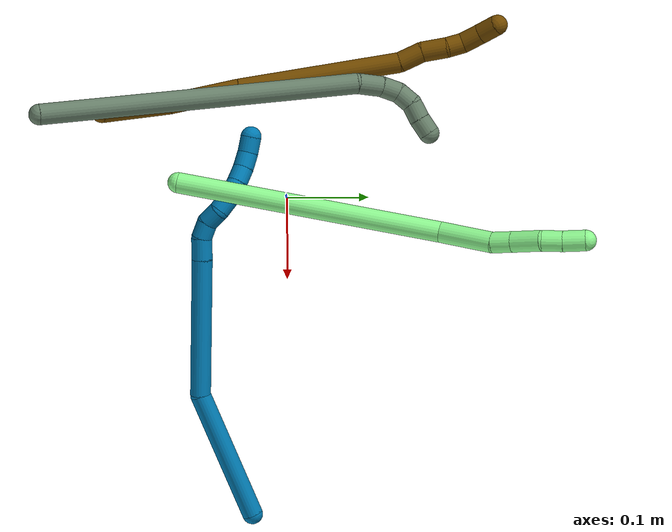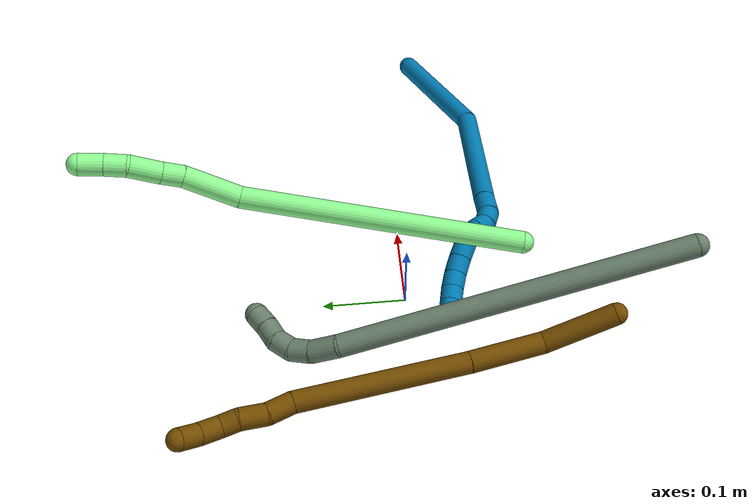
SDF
<sdf version="1.7">
 <world name="default">
  <model name="9">
   <static>0</static>
   <link name="9">
    <collision name="collision-cylinder-e_1_1_4">
     <pose>-0.0692 -0.017659 -0.039445 2.72066 -1.01253 -2.40607</pose>
     <geometry><cylinder><radius>0.0125</radius><length>0.163174</length></cylinder></geometry>
     <surface>
      <friction><ode><mu>1.16</mu><mu2>1.16</mu2><slip1>0</slip1><slip2>0</slip2></ode></friction>
      <contact><ode><kp>1e+06</kp><kd>1</kd><max_vel>0</max_vel><min_depth>0.001</min_depth></ode></contact>
     </surface>
    </collision>
    <visual name="visual-cylinder-e_1_1_4">
     <pose>-0.0692 -0.017659 -0.039445 2.72066 -1.01253 -2.40607</pose>
     <geometry><cylinder><radius>0.0125</radius><length>0.163174</length></cylinder></geometry>
     <material><ambient>0 0.490196 0.709804 1</ambient></material>
    </visual>
    <collision name="collision-cylinder-e_2_4_5">
     <pose>-0.220266 -0.029364 -0.097268 -2.82826 -1.33906 2.74762</pose>
     <geometry><cylinder><radius>0.0125</radius><length>0.168228</length></cylinder></geometry>
     <surface>
      <friction><ode><mu>1.16</mu><mu2>1.16</mu2><slip1>0</slip1><slip2>0</slip2></ode></friction>
      <contact><ode><kp>1e+06</kp><kd>1</kd><max_vel>0</max_vel><min_depth>0.001</min_depth></ode></contact>
     </surface>
    </collision>
    <visual name="visual-cylinder-e_2_4_5">
     <pose>-0.220266 -0.029364 -0.097268 -2.82826 -1.33906 2.74762</pose>
     <geometry><cylinder><radius>0.0125</radius><length>0.168228</length></cylinder></geometry>
     <material><ambient>0 0.490196 0.709804 1</ambient></material>
    </visual>
    <collision name="collision-cylinder-e_3_5_6">
     <pose>-0.314978 -0.022682 -0.118994 -2.92758 -1.31017 2.86376</pose>
     <geometry><cylinder><radius>0.0125</radius><length>0.02659</length></cylinder></geometry>
     <surface>
      <friction><ode><mu>1.16</mu><mu2>1.16</mu2><slip1>0</slip1><slip2>0</slip2></ode></friction>
      <contact><ode><kp>1e+06</kp><kd>1</kd><max_vel>0</max_vel><min_depth>0.001</min_depth></ode></contact>
     </surface>
    </collision>
    <visual name="visual-cylinder-e_3_5_6">
     <pose>-0.314978 -0.022682 -0.118994 -2.92758 -1.31017 2.86376</pose>
     <geometry><cylinder><radius>0.0125</radius><length>0.02659</length></cylinder></geometry>
     <material><ambient>0 0.490196 0.709804 1</ambient></material>
    </visual>
    <collision name="collision-cylinder-e_4_6_7">
     <pose>-0.337715 -0.019255 -0.121756 -1.35712 -1.29846 1.09834</pose>
     <geometry><cylinder><radius>0.0125</radius><length>0.02054</length></cylinder></geometry>
     <surface>
      <friction><ode><mu>1.16</mu><mu2>1.16</mu2><slip1>0</slip1><slip2>0</slip2></ode></friction>
      <contact><ode><kp>1e+06</kp><kd>1</kd><max_vel>0</max_vel><min_depth>0.001</min_depth></ode></contact>
     </surface>
    </collision>
    <visual name="visual-cylinder-e_4_6_7">
     <pose>-0.337715 -0.019255 -0.121756 -1.35712 -1.29846 1.09834</pose>
     <geometry><cylinder><radius>0.0125</radius><length>0.02054</length></cylinder></geometry>
     <material><ambient>0 0.490196 0.709804 1</ambient></material>
    </visual>
    <collision name="collision-cylinder-e_5_7_8">
     <pose>-0.356082 -0.013028 -0.116302 -0.627079 -0.953872 0.331996</pose>
     <geometry><cylinder><radius>0.0125</radius><length>0.02078</length></cylinder></geometry>
     <surface>
      <friction><ode><mu>1.16</mu><mu2>1.16</mu2><slip1>0</slip1><slip2>0</slip2></ode></friction>
      <contact><ode><kp>1e+06</kp><kd>1</kd><max_vel>0</max_vel><min_depth>0.001</min_depth></ode></contact>
     </surface>
    </collision>
    <visual name="visual-cylinder-e_5_7_8">
     <pose>-0.356082 -0.013028 -0.116302 -0.627079 -0.953872 0.331996</pose>
     <geometry><cylinder><radius>0.0125</radius><length>0.02078</length></cylinder></geometry>
     <material><ambient>0 0.490196 0.709804 1</ambient></material>
    </visual>
    <collision name="collision-cylinder-e_6_8_9">
     <pose>-0.372712 -0.003319 -0.110056 -1.35131 -0.910444 0.747777</pose>
     <geometry><cylinder><radius>0.0125</radius><length>0.020653</length></cylinder></geometry>
     <surface>
      <friction><ode><mu>1.16</mu><mu2>1.16</mu2><slip1>0</slip1><slip2>0</slip2></ode></friction>
      <contact><ode><kp>1e+06</kp><kd>1</kd><max_vel>0</max_vel><min_depth>0.001</min_depth></ode></contact>
     </surface>
    </collision>
    <visual name="visual-cylinder-e_6_8_9">
     <pose>-0.372712 -0.003319 -0.110056 -1.35131 -0.910444 0.747777</pose>
     <geometry><cylinder><radius>0.0125</radius><length>0.020653</length></cylinder></geometry>
     <material><ambient>0 0.490196 0.709804 1</ambient></material>
    </visual>
    <collision name="collision-cylinder-e_7_9_10">
     <pose>-0.387905 0.00978 -0.11036 -1.80947 -0.779695 0.963499</pose>
     <geometry><cylinder><radius>0.0125</radius><length>0.020019</length></cylinder></geometry>
     <surface>
      <friction><ode><mu>1.16</mu><mu2>1.16</mu2><slip1>0</slip1><slip2>0</slip2></ode></friction>
      <contact><ode><kp>1e+06</kp><kd>1</kd><max_vel>0</max_vel><min_depth>0.001</min_depth></ode></contact>
     </surface>
    </collision>
    <visual name="visual-cylinder-e_7_9_10">
     <pose>-0.387905 0.00978 -0.11036 -1.80947 -0.779695 0.963499</pose>
     <geometry><cylinder><radius>0.0125</radius><length>0.020019</length></cylinder></geometry>
     <material><ambient>0 0.490196 0.709804 1</ambient></material>
    </visual>
    <collision name="collision-cylinder-e_8_10_11">
     <pose>-0.402277 0.023152 -0.114194 -1.89254 -0.822796 1.08865</pose>
     <geometry><cylinder><radius>0.0125</radius><length>0.02001</length></cylinder></geometry>
     <surface>
      <friction><ode><mu>1.16</mu><mu2>1.16</mu2><slip1>0</slip1><slip2>0</slip2></ode></friction>
      <contact><ode><kp>1e+06</kp><kd>1</kd><max_vel>0</max_vel><min_depth>0.001</min_depth></ode></contact>
     </surface>
    </collision>
    <visual name="visual-cylinder-e_8_10_11">
     <pose>-0.402277 0.023152 -0.114194 -1.89254 -0.822796 1.08865</pose>
     <geometry><cylinder><radius>0.0125</radius><length>0.02001</length></cylinder></geometry>
     <material><ambient>0 0.490196 0.709804 1</ambient></material>
    </visual>
    <collision name="collision-cylinder-e_9_11_12">
     <pose>-0.4179 0.034702 -0.118659 -1.99697 -0.977127 1.3797</pose>
     <geometry><cylinder><radius>0.0125</radius><length>0.02</length></cylinder></geometry>
     <surface>
      <friction><ode><mu>1.16</mu><mu2>1.16</mu2><slip1>0</slip1><slip2>0</slip2></ode></friction>
      <contact><ode><kp>1e+06</kp><kd>1</kd><max_vel>0</max_vel><min_depth>0.001</min_depth></ode></contact>
     </surface>
    </collision>
    <visual name="visual-cylinder-e_9_11_12">
     <pose>-0.4179 0.034702 -0.118659 -1.99697 -0.977127 1.3797</pose>
     <geometry><cylinder><radius>0.0125</radius><length>0.02</length></cylinder></geometry>
     <material><ambient>0 0.490196 0.709804 1</ambient></material>
    </visual>
    <collision name="collision-cylinder-e_10_12_2">
     <pose>-0.435587 0.042753 -0.1227 -2.09967 -1.22131 1.76808</pose>
     <geometry><cylinder><radius>0.0125</radius><length>0.020005</length></cylinder></geometry>
     <surface>
      <friction><ode><mu>1.16</mu><mu2>1.16</mu2><slip1>0</slip1><slip2>0</slip2></ode></friction>
      <contact><ode><kp>1e+06</kp><kd>1</kd><max_vel>0</max_vel><min_depth>0.001</min_depth></ode></contact>
     </surface>
    </collision>
    <visual name="visual-cylinder-e_10_12_2">
     <pose>-0.435587 0.042753 -0.1227 -2.09967 -1.22131 1.76808</pose>
     <geometry><cylinder><radius>0.0125</radius><length>0.020005</length></cylinder></geometry>
     <material><ambient>0 0.490196 0.709804 1</ambient></material>
    </visual>
    <collision name="collision-sphere-2">
     <pose>-0.444985 0.04571 -0.124428 0 -0 0</pose>
     <geometry><sphere><radius>0.0125</radius></sphere></geometry>
     <surface>
      <friction><ode><mu>1.16</mu><mu2>1.16</mu2><slip1>0</slip1><slip2>0</slip2></ode></friction>
      <contact><ode><kp>1e+06</kp><kd>1</kd><max_vel>0</max_vel><min_depth>0.001</min_depth></ode></contact>
     </surface>
    </collision>
    <visual name="visual-sphere-2">
     <pose>-0.444985 0.04571 -0.124428 0 -0 0</pose>
     <geometry><sphere><radius>0.0125</radius></sphere></geometry>
     <material><ambient>0 0.490196 0.709804 1</ambient></material>
    </visual>
    <collision name="collision-sphere-12">
     <pose>-0.426189 0.039795 -0.120972 0 -0 0</pose>
     <geometry><sphere><radius>0.0125</radius></sphere></geometry>
     <surface>
      <friction><ode><mu>1.16</mu><mu2>1.16</mu2><slip1>0</slip1><slip2>0</slip2></ode></friction>
      <contact><ode><kp>1e+06</kp><kd>1</kd><max_vel>0</max_vel><min_depth>0.001</min_depth></ode></contact>
     </surface>
    </collision>
    <visual name="visual-sphere-12">
     <pose>-0.426189 0.039795 -0.120972 0 -0 0</pose>
     <geometry><sphere><radius>0.0125</radius></sphere></geometry>
     <material><ambient>0 0.490196 0.709804 1</ambient></material>
    </visual>
    <collision name="collision-sphere-11">
     <pose>-0.409611 0.029608 -0.116346 0 -0 0</pose>
     <geometry><sphere><radius>0.0125</radius></sphere></geometry>
     <surface>
      <friction><ode><mu>1.16</mu><mu2>1.16</mu2><slip1>0</slip1><slip2>0</slip2></ode></friction>
      <contact><ode><kp>1e+06</kp><kd>1</kd><max_vel>0</max_vel><min_depth>0.001</min_depth></ode></contact>
     </surface>
    </collision>
    <visual name="visual-sphere-11">
     <pose>-0.409611 0.029608 -0.116346 0 -0 0</pose>
     <geometry><sphere><radius>0.0125</radius></sphere></geometry>
     <material><ambient>0 0.490196 0.709804 1</ambient></material>
    </visual>
    <collision name="collision-sphere-10">
     <pose>-0.394943 0.016696 -0.112043 0 -0 0</pose>
     <geometry><sphere><radius>0.0125</radius></sphere></geometry>
     <surface>
      <friction><ode><mu>1.16</mu><mu2>1.16</mu2><slip1>0</slip1><slip2>0</slip2></ode></friction>
      <contact><ode><kp>1e+06</kp><kd>1</kd><max_vel>0</max_vel><min_depth>0.001</min_depth></ode></contact>
     </surface>
    </collision>
    <visual name="visual-sphere-10">
     <pose>-0.394943 0.016696 -0.112043 0 -0 0</pose>
     <geometry><sphere><radius>0.0125</radius></sphere></geometry>
     <material><ambient>0 0.490196 0.709804 1</ambient></material>
    </visual>
    <collision name="collision-sphere-9">
     <pose>-0.380868 0.002863 -0.108677 0 -0 0</pose>
     <geometry><sphere><radius>0.0125</radius></sphere></geometry>
     <surface>
      <friction><ode><mu>1.16</mu><mu2>1.16</mu2><slip1>0</slip1><slip2>0</slip2></ode></friction>
      <contact><ode><kp>1e+06</kp><kd>1</kd><max_vel>0</max_vel><min_depth>0.001</min_depth></ode></contact>
     </surface>
    </collision>
    <visual name="visual-sphere-9">
     <pose>-0.380868 0.002863 -0.108677 0 -0 0</pose>
     <geometry><sphere><radius>0.0125</radius></sphere></geometry>
     <material><ambient>0 0.490196 0.709804 1</ambient></material>
    </visual>
    <collision name="collision-sphere-4">
     <pose>-0.138401 -0.035319 -0.07889 0 -0 0</pose>
     <geometry><sphere><radius>0.0125</radius></sphere></geometry>
     <surface>
      <friction><ode><mu>1.16</mu><mu2>1.16</mu2><slip1>0</slip1><slip2>0</slip2></ode></friction>
      <contact><ode><kp>1e+06</kp><kd>1</kd><max_vel>0</max_vel><min_depth>0.001</min_depth></ode></contact>
     </surface>
    </collision>
    <visual name="visual-sphere-4">
     <pose>-0.138401 -0.035319 -0.07889 0 -0 0</pose>
     <geometry><sphere><radius>0.0125</radius></sphere></geometry>
     <material><ambient>0 0.490196 0.709804 1</ambient></material>
    </visual>
    <collision name="collision-sphere-1">
     <geometry><sphere><radius>0.0125</radius></sphere></geometry>
     <surface>
      <friction><ode><mu>1.16</mu><mu2>1.16</mu2><slip1>0</slip1><slip2>0</slip2></ode></friction>
      <contact><ode><kp>1e+06</kp><kd>1</kd><max_vel>0</max_vel><min_depth>0.001</min_depth></ode></contact>
     </surface>
    </collision>
    <visual name="visual-sphere-1">
     <geometry><sphere><radius>0.0125</radius></sphere></geometry>
     <material><ambient>0 0.490196 0.709804 1</ambient></material>
    </visual>
    <collision name="collision-sphere-8">
     <pose>-0.364557 -0.009501 -0.111435 0 -0 0</pose>
     <geometry><sphere><radius>0.0125</radius></sphere></geometry>
     <surface>
      <friction><ode><mu>1.16</mu><mu2>1.16</mu2><slip1>0</slip1><slip2>0</slip2></ode></friction>
      <contact><ode><kp>1e+06</kp><kd>1</kd><max_vel>0</max_vel><min_depth>0.001</min_depth></ode></contact>
     </surface>
    </collision>
    <visual name="visual-sphere-8">
     <pose>-0.364557 -0.009501 -0.111435 0 -0 0</pose>
     <geometry><sphere><radius>0.0125</radius></sphere></geometry>
     <material><ambient>0 0.490196 0.709804 1</ambient></material>
    </visual>
    <collision name="collision-sphere-5">
     <pose>-0.302132 -0.02341 -0.115646 0 -0 0</pose>
     <geometry><sphere><radius>0.0125</radius></sphere></geometry>
     <surface>
      <friction><ode><mu>1.16</mu><mu2>1.16</mu2><slip1>0</slip1><slip2>0</slip2></ode></friction>
      <contact><ode><kp>1e+06</kp><kd>1</kd><max_vel>0</max_vel><min_depth>0.001</min_depth></ode></contact>
     </surface>
    </collision>
    <visual name="visual-sphere-5">
     <pose>-0.302132 -0.02341 -0.115646 0 -0 0</pose>
     <geometry><sphere><radius>0.0125</radius></sphere></geometry>
     <material><ambient>0 0.490196 0.709804 1</ambient></material>
    </visual>
    <collision name="collision-sphere-6">
     <pose>-0.327824 -0.021954 -0.122341 0 -0 0</pose>
     <geometry><sphere><radius>0.0125</radius></sphere></geometry>
     <surface>
      <friction><ode><mu>1.16</mu><mu2>1.16</mu2><slip1>0</slip1><slip2>0</slip2></ode></friction>
      <contact><ode><kp>1e+06</kp><kd>1</kd><max_vel>0</max_vel><min_depth>0.001</min_depth></ode></contact>
     </surface>
    </collision>
    <visual name="visual-sphere-6">
     <pose>-0.327824 -0.021954 -0.122341 0 -0 0</pose>
     <geometry><sphere><radius>0.0125</radius></sphere></geometry>
     <material><ambient>0 0.490196 0.709804 1</ambient></material>
    </visual>
    <collision name="collision-sphere-7">
     <pose>-0.347607 -0.016555 -0.12117 0 -0 0</pose>
     <geometry><sphere><radius>0.0125</radius></sphere></geometry>
     <surface>
      <friction><ode><mu>1.16</mu><mu2>1.16</mu2><slip1>0</slip1><slip2>0</slip2></ode></friction>
      <contact><ode><kp>1e+06</kp><kd>1</kd><max_vel>0</max_vel><min_depth>0.001</min_depth></ode></contact>
     </surface>
    </collision>
    <visual name="visual-sphere-7">
     <pose>-0.347607 -0.016555 -0.12117 0 -0 0</pose>
     <geometry><sphere><radius>0.0125</radius></sphere></geometry>
     <material><ambient>0 0.490196 0.709804 1</ambient></material>
    </visual>
    <inertial>
     <pose>-0.223286 -0.013902 -0.084953 0 -0 0</pose>
     <mass>0.5</mass>
     <inertia>
      <ixx>-0.000354</ixx>
      <ixy>0</ixy>
      <ixz>0</ixz>
      <iyy>0.000658</iyy>
      <iyz>0</iyz>
      <izz>0.000753</izz>
     </inertia>
    </inertial>
   </link>
   <pose>0.38776 -0.044132 0.012437 -0.897358 0.429839 -0.155449</pose>
  </model>
  <model name="12">
   <static>0</static>
   <link name="12">
    <collision name="collision-cylinder-e_1_1_4">
     <pose>0.001302 0.021001 -0.037521 -2.63132 0.030272 -0.115941</pose>
     <geometry><cylinder><radius>0.0125</radius><length>0.086036</length></cylinder></geometry>
     <surface>
      <friction><ode><mu>1.16</mu><mu2>1.16</mu2><slip1>0</slip1><slip2>0</slip2></ode></friction>
      <contact><ode><kp>1e+06</kp><kd>1</kd><max_vel>0</max_vel><min_depth>0.001</min_depth></ode></contact>
     </surface>
    </collision>
    <visual name="visual-cylinder-e_1_1_4">
     <pose>0.001302 0.021001 -0.037521 -2.63132 0.030272 -0.115941</pose>
     <geometry><cylinder><radius>0.0125</radius><length>0.086036</length></cylinder></geometry>
     <material><ambient>0.466667 0.301961 0 1</ambient></material>
    </visual>
    <collision name="collision-cylinder-e_2_4_5">
     <pose>-0.006244 0.072092 -0.104958 -2.35331 -0.205587 0.486247</pose>
     <geometry><cylinder><radius>0.0125</radius><length>0.086687</length></cylinder></geometry>
     <surface>
      <friction><ode><mu>1.16</mu><mu2>1.16</mu2><slip1>0</slip1><slip2>0</slip2></ode></friction>
      <contact><ode><kp>1e+06</kp><kd>1</kd><max_vel>0</max_vel><min_depth>0.001</min_depth></ode></contact>
     </surface>
    </collision>
    <visual name="visual-cylinder-e_2_4_5">
     <pose>-0.006244 0.072092 -0.104958 -2.35331 -0.205587 0.486247</pose>
     <geometry><cylinder><radius>0.0125</radius><length>0.086687</length></cylinder></geometry>
     <material><ambient>0.466667 0.301961 0 1</ambient></material>
    </visual>
    <collision name="collision-cylinder-e_3_5_6">
     <pose>-0.030606 0.17244 -0.202462 -2.33682 -0.15781 0.367371</pose>
     <geometry><cylinder><radius>0.0125</radius><length>0.197436</length></cylinder></geometry>
     <surface>
      <friction><ode><mu>1.16</mu><mu2>1.16</mu2><slip1>0</slip1><slip2>0</slip2></ode></friction>
      <contact><ode><kp>1e+06</kp><kd>1</kd><max_vel>0</max_vel><min_depth>0.001</min_depth></ode></contact>
     </surface>
    </collision>
    <visual name="visual-cylinder-e_3_5_6">
     <pose>-0.030606 0.17244 -0.202462 -2.33682 -0.15781 0.367371</pose>
     <geometry><cylinder><radius>0.0125</radius><length>0.197436</length></cylinder></geometry>
     <material><ambient>0.466667 0.301961 0 1</ambient></material>
    </visual>
    <collision name="collision-cylinder-e_4_6_7">
     <pose>-0.052248 0.251658 -0.280267 -2.42166 -0.423635 1.0382</pose>
     <geometry><cylinder><radius>0.0125</radius><length>0.029811</length></cylinder></geometry>
     <surface>
      <friction><ode><mu>1.16</mu><mu2>1.16</mu2><slip1>0</slip1><slip2>0</slip2></ode></friction>
      <contact><ode><kp>1e+06</kp><kd>1</kd><max_vel>0</max_vel><min_depth>0.001</min_depth></ode></contact>
     </surface>
    </collision>
    <visual name="visual-cylinder-e_4_6_7">
     <pose>-0.052248 0.251658 -0.280267 -2.42166 -0.423635 1.0382</pose>
     <geometry><cylinder><radius>0.0125</radius><length>0.029811</length></cylinder></geometry>
     <material><ambient>0.466667 0.301961 0 1</ambient></material>
    </visual>
    <collision name="collision-cylinder-e_5_7_8">
     <pose>-0.061597 0.272218 -0.299873 -2.25129 -0.212589 0.440037</pose>
     <geometry><cylinder><radius>0.0125</radius><length>0.030538</length></cylinder></geometry>
     <surface>
      <friction><ode><mu>1.16</mu><mu2>1.16</mu2><slip1>0</slip1><slip2>0</slip2></ode></friction>
      <contact><ode><kp>1e+06</kp><kd>1</kd><max_vel>0</max_vel><min_depth>0.001</min_depth></ode></contact>
     </surface>
    </collision>
    <visual name="visual-cylinder-e_5_7_8">
     <pose>-0.061597 0.272218 -0.299873 -2.25129 -0.212589 0.440037</pose>
     <geometry><cylinder><radius>0.0125</radius><length>0.030538</length></cylinder></geometry>
     <material><ambient>0.466667 0.301961 0 1</ambient></material>
    </visual>
    <collision name="collision-cylinder-e_6_8_9">
     <pose>-0.06691 0.289826 -0.317143 -2.49021 -0.208101 0.599778</pose>
     <geometry><cylinder><radius>0.0125</radius><length>0.020254</length></cylinder></geometry>
     <surface>
      <friction><ode><mu>1.16</mu><mu2>1.16</mu2><slip1>0</slip1><slip2>0</slip2></ode></friction>
      <contact><ode><kp>1e+06</kp><kd>1</kd><max_vel>0</max_vel><min_depth>0.001</min_depth></ode></contact>
     </surface>
    </collision>
    <visual name="visual-cylinder-e_6_8_9">
     <pose>-0.06691 0.289826 -0.317143 -2.49021 -0.208101 0.599778</pose>
     <geometry><cylinder><radius>0.0125</radius><length>0.020254</length></cylinder></geometry>
     <material><ambient>0.466667 0.301961 0 1</ambient></material>
    </visual>
    <collision name="collision-cylinder-e_7_9_10">
     <pose>-0.075626 0.304516 -0.331371 -2.20209 -0.55195 1.01773</pose>
     <geometry><cylinder><radius>0.0125</radius><length>0.025263</length></cylinder></geometry>
     <surface>
      <friction><ode><mu>1.16</mu><mu2>1.16</mu2><slip1>0</slip1><slip2>0</slip2></ode></friction>
      <contact><ode><kp>1e+06</kp><kd>1</kd><max_vel>0</max_vel><min_depth>0.001</min_depth></ode></contact>
     </surface>
    </collision>
    <visual name="visual-cylinder-e_7_9_10">
     <pose>-0.075626 0.304516 -0.331371 -2.20209 -0.55195 1.01773</pose>
     <geometry><cylinder><radius>0.0125</radius><length>0.025263</length></cylinder></geometry>
     <material><ambient>0.466667 0.301961 0 1</ambient></material>
    </visual>
    <collision name="collision-cylinder-e_8_10_2">
     <pose>-0.089264 0.322011 -0.341824 -2.00673 -0.625042 0.938395</pose>
     <geometry><cylinder><radius>0.0125</radius><length>0.023976</length></cylinder></geometry>
     <surface>
      <friction><ode><mu>1.16</mu><mu2>1.16</mu2><slip1>0</slip1><slip2>0</slip2></ode></friction>
      <contact><ode><kp>1e+06</kp><kd>1</kd><max_vel>0</max_vel><min_depth>0.001</min_depth></ode></contact>
     </surface>
    </collision>
    <visual name="visual-cylinder-e_8_10_2">
     <pose>-0.089264 0.322011 -0.341824 -2.00673 -0.625042 0.938395</pose>
     <geometry><cylinder><radius>0.0125</radius><length>0.023976</length></cylinder></geometry>
     <material><ambient>0.466667 0.301961 0 1</ambient></material>
    </visual>
    <collision name="collision-sphere-2">
     <pose>-0.096279 0.330824 -0.345929 0 -0 0</pose>
     <geometry><sphere><radius>0.0125</radius></sphere></geometry>
     <surface>
      <friction><ode><mu>1.16</mu><mu2>1.16</mu2><slip1>0</slip1><slip2>0</slip2></ode></friction>
      <contact><ode><kp>1e+06</kp><kd>1</kd><max_vel>0</max_vel><min_depth>0.001</min_depth></ode></contact>
     </surface>
    </collision>
    <visual name="visual-sphere-2">
     <pose>-0.096279 0.330824 -0.345929 0 -0 0</pose>
     <geometry><sphere><radius>0.0125</radius></sphere></geometry>
     <material><ambient>0.466667 0.301961 0 1</ambient></material>
    </visual>
    <collision name="collision-sphere-10">
     <pose>-0.082249 0.313199 -0.337719 0 -0 0</pose>
     <geometry><sphere><radius>0.0125</radius></sphere></geometry>
     <surface>
      <friction><ode><mu>1.16</mu><mu2>1.16</mu2><slip1>0</slip1><slip2>0</slip2></ode></friction>
      <contact><ode><kp>1e+06</kp><kd>1</kd><max_vel>0</max_vel><min_depth>0.001</min_depth></ode></contact>
     </surface>
    </collision>
    <visual name="visual-sphere-10">
     <pose>-0.082249 0.313199 -0.337719 0 -0 0</pose>
     <geometry><sphere><radius>0.0125</radius></sphere></geometry>
     <material><ambient>0.466667 0.301961 0 1</ambient></material>
    </visual>
    <collision name="collision-sphere-9">
     <pose>-0.069003 0.295833 -0.325023 0 -0 0</pose>
     <geometry><sphere><radius>0.0125</radius></sphere></geometry>
     <surface>
      <friction><ode><mu>1.16</mu><mu2>1.16</mu2><slip1>0</slip1><slip2>0</slip2></ode></friction>
      <contact><ode><kp>1e+06</kp><kd>1</kd><max_vel>0</max_vel><min_depth>0.001</min_depth></ode></contact>
     </surface>
    </collision>
    <visual name="visual-sphere-9">
     <pose>-0.069003 0.295833 -0.325023 0 -0 0</pose>
     <geometry><sphere><radius>0.0125</radius></sphere></geometry>
     <material><ambient>0.466667 0.301961 0 1</ambient></material>
    </visual>
    <collision name="collision-sphere-4">
     <pose>0.002604 0.042002 -0.075042 0 -0 0</pose>
     <geometry><sphere><radius>0.0125</radius></sphere></geometry>
     <surface>
      <friction><ode><mu>1.16</mu><mu2>1.16</mu2><slip1>0</slip1><slip2>0</slip2></ode></friction>
      <contact><ode><kp>1e+06</kp><kd>1</kd><max_vel>0</max_vel><min_depth>0.001</min_depth></ode></contact>
     </surface>
    </collision>
    <visual name="visual-sphere-4">
     <pose>0.002604 0.042002 -0.075042 0 -0 0</pose>
     <geometry><sphere><radius>0.0125</radius></sphere></geometry>
     <material><ambient>0.466667 0.301961 0 1</ambient></material>
    </visual>
    <collision name="collision-sphere-1">
     <geometry><sphere><radius>0.0125</radius></sphere></geometry>
     <surface>
      <friction><ode><mu>1.16</mu><mu2>1.16</mu2><slip1>0</slip1><slip2>0</slip2></ode></friction>
      <contact><ode><kp>1e+06</kp><kd>1</kd><max_vel>0</max_vel><min_depth>0.001</min_depth></ode></contact>
     </surface>
    </collision>
    <visual name="visual-sphere-1">
     <geometry><sphere><radius>0.0125</radius></sphere></geometry>
     <material><ambient>0.466667 0.301961 0 1</ambient></material>
    </visual>
    <collision name="collision-sphere-8">
     <pose>-0.064818 0.283819 -0.309263 0 -0 0</pose>
     <geometry><sphere><radius>0.0125</radius></sphere></geometry>
     <surface>
      <friction><ode><mu>1.16</mu><mu2>1.16</mu2><slip1>0</slip1><slip2>0</slip2></ode></friction>
      <contact><ode><kp>1e+06</kp><kd>1</kd><max_vel>0</max_vel><min_depth>0.001</min_depth></ode></contact>
     </surface>
    </collision>
    <visual name="visual-sphere-8">
     <pose>-0.064818 0.283819 -0.309263 0 -0 0</pose>
     <geometry><sphere><radius>0.0125</radius></sphere></geometry>
     <material><ambient>0.466667 0.301961 0 1</ambient></material>
    </visual>
    <collision name="collision-sphere-5">
     <pose>-0.015092 0.102181 -0.134874 0 -0 0</pose>
     <geometry><sphere><radius>0.0125</radius></sphere></geometry>
     <surface>
      <friction><ode><mu>1.16</mu><mu2>1.16</mu2><slip1>0</slip1><slip2>0</slip2></ode></friction>
      <contact><ode><kp>1e+06</kp><kd>1</kd><max_vel>0</max_vel><min_depth>0.001</min_depth></ode></contact>
     </surface>
    </collision>
    <visual name="visual-sphere-5">
     <pose>-0.015092 0.102181 -0.134874 0 -0 0</pose>
     <geometry><sphere><radius>0.0125</radius></sphere></geometry>
     <material><ambient>0.466667 0.301961 0 1</ambient></material>
    </visual>
    <collision name="collision-sphere-6">
     <pose>-0.046121 0.242699 -0.270051 0 -0 0</pose>
     <geometry><sphere><radius>0.0125</radius></sphere></geometry>
     <surface>
      <friction><ode><mu>1.16</mu><mu2>1.16</mu2><slip1>0</slip1><slip2>0</slip2></ode></friction>
      <contact><ode><kp>1e+06</kp><kd>1</kd><max_vel>0</max_vel><min_depth>0.001</min_depth></ode></contact>
     </surface>
    </collision>
    <visual name="visual-sphere-6">
     <pose>-0.046121 0.242699 -0.270051 0 -0 0</pose>
     <geometry><sphere><radius>0.0125</radius></sphere></geometry>
     <material><ambient>0.466667 0.301961 0 1</ambient></material>
    </visual>
    <collision name="collision-sphere-7">
     <pose>-0.058375 0.260617 -0.290482 0 -0 0</pose>
     <geometry><sphere><radius>0.0125</radius></sphere></geometry>
     <surface>
      <friction><ode><mu>1.16</mu><mu2>1.16</mu2><slip1>0</slip1><slip2>0</slip2></ode></friction>
      <contact><ode><kp>1e+06</kp><kd>1</kd><max_vel>0</max_vel><min_depth>0.001</min_depth></ode></contact>
     </surface>
    </collision>
    <visual name="visual-sphere-7">
     <pose>-0.058375 0.260617 -0.290482 0 -0 0</pose>
     <geometry><sphere><radius>0.0125</radius></sphere></geometry>
     <material><ambient>0.466667 0.301961 0 1</ambient></material>
    </visual>
    <inertial>
     <pose>-0.030633 0.158402 -0.185605 0 -0 0</pose>
     <mass>0.5</mass>
     <inertia>
      <ixx>0.000963</ixx>
      <ixy>0</ixy>
      <ixz>0</ixz>
      <iyy>-0.000193</iyy>
      <iyz>0</iyz>
      <izz>-0.000448</izz>
     </inertia>
    </inertial>
   </link>
   <pose>-0.099262 -0.221338 0.097596 0.669931 0.522887 -0.026447</pose>
  </model>
  <model name="13">
   <static>0</static>
   <link name="13">
    <collision name="collision-cylinder-e_1_1_4">
     <pose>0.054559 0.104819 0.10811 -0.769948 0.34761 -0.142045</pose>
     <geometry><cylinder><radius>0.0125</radius><length>0.320322</length></cylinder></geometry>
     <surface>
      <friction><ode><mu>1.16</mu><mu2>1.16</mu2><slip1>0</slip1><slip2>0</slip2></ode></friction>
      <contact><ode><kp>1e+06</kp><kd>1</kd><max_vel>0</max_vel><min_depth>0.001</min_depth></ode></contact>
     </surface>
    </collision>
    <visual name="visual-cylinder-e_1_1_4">
     <pose>0.054559 0.104819 0.10811 -0.769948 0.34761 -0.142045</pose>
     <geometry><cylinder><radius>0.0125</radius><length>0.320322</length></cylinder></geometry>
     <material><ambient>0.564706 0.984314 0.572549 1</ambient></material>
    </visual>
    <collision name="collision-cylinder-e_2_4_5">
     <pose>0.117804 0.22454 0.24471 -0.481891 0.263848 -0.065188</pose>
     <geometry><cylinder><radius>0.0125</radius><length>0.06661</length></cylinder></geometry>
     <surface>
      <friction><ode><mu>1.16</mu><mu2>1.16</mu2><slip1>0</slip1><slip2>0</slip2></ode></friction>
      <contact><ode><kp>1e+06</kp><kd>1</kd><max_vel>0</max_vel><min_depth>0.001</min_depth></ode></contact>
     </surface>
    </collision>
    <visual name="visual-cylinder-e_2_4_5">
     <pose>0.117804 0.22454 0.24471 -0.481891 0.263848 -0.065188</pose>
     <geometry><cylinder><radius>0.0125</radius><length>0.06661</length></cylinder></geometry>
     <material><ambient>0.564706 0.984314 0.572549 1</ambient></material>
    </visual>
    <collision name="collision-cylinder-e_3_5_6">
     <pose>0.127364 0.246394 0.283357 -0.600281 0.070918 -0.021957</pose>
     <geometry><cylinder><radius>0.0125</radius><length>0.024677</length></cylinder></geometry>
     <surface>
      <friction><ode><mu>1.16</mu><mu2>1.16</mu2><slip1>0</slip1><slip2>0</slip2></ode></friction>
      <contact><ode><kp>1e+06</kp><kd>1</kd><max_vel>0</max_vel><min_depth>0.001</min_depth></ode></contact>
     </surface>
    </collision>
    <visual name="visual-cylinder-e_3_5_6">
     <pose>0.127364 0.246394 0.283357 -0.600281 0.070918 -0.021957</pose>
     <geometry><cylinder><radius>0.0125</radius><length>0.024677</length></cylinder></geometry>
     <material><ambient>0.564706 0.984314 0.572549 1</ambient></material>
    </visual>
    <collision name="collision-cylinder-e_4_6_7">
     <pose>0.12899 0.262528 0.309392 -0.524273 0.040952 -0.010989</pose>
     <geometry><cylinder><radius>0.0125</radius><length>0.036718</length></cylinder></geometry>
     <surface>
      <friction><ode><mu>1.16</mu><mu2>1.16</mu2><slip1>0</slip1><slip2>0</slip2></ode></friction>
      <contact><ode><kp>1e+06</kp><kd>1</kd><max_vel>0</max_vel><min_depth>0.001</min_depth></ode></contact>
     </surface>
    </collision>
    <visual name="visual-cylinder-e_4_6_7">
     <pose>0.12899 0.262528 0.309392 -0.524273 0.040952 -0.010989</pose>
     <geometry><cylinder><radius>0.0125</radius><length>0.036718</length></cylinder></geometry>
     <material><ambient>0.564706 0.984314 0.572549 1</ambient></material>
    </visual>
    <collision name="collision-cylinder-e_5_7_8">
     <pose>0.132048 0.280363 0.333687 -0.79934 0.188795 -0.079943</pose>
     <geometry><cylinder><radius>0.0125</radius><length>0.024576</length></cylinder></geometry>
     <surface>
      <friction><ode><mu>1.16</mu><mu2>1.16</mu2><slip1>0</slip1><slip2>0</slip2></ode></friction>
      <contact><ode><kp>1e+06</kp><kd>1</kd><max_vel>0</max_vel><min_depth>0.001</min_depth></ode></contact>
     </surface>
    </collision>
    <visual name="visual-cylinder-e_5_7_8">
     <pose>0.132048 0.280363 0.333687 -0.79934 0.188795 -0.079943</pose>
     <geometry><cylinder><radius>0.0125</radius><length>0.024576</length></cylinder></geometry>
     <material><ambient>0.564706 0.984314 0.572549 1</ambient></material>
    </visual>
    <collision name="collision-cylinder-e_6_8_2">
     <pose>0.136109 0.298741 0.351371 -0.809388 0.129926 -0.055716</pose>
     <geometry><cylinder><radius>0.0125</radius><length>0.027098</length></cylinder></geometry>
     <surface>
      <friction><ode><mu>1.16</mu><mu2>1.16</mu2><slip1>0</slip1><slip2>0</slip2></ode></friction>
      <contact><ode><kp>1e+06</kp><kd>1</kd><max_vel>0</max_vel><min_depth>0.001</min_depth></ode></contact>
     </surface>
    </collision>
    <visual name="visual-cylinder-e_6_8_2">
     <pose>0.136109 0.298741 0.351371 -0.809388 0.129926 -0.055716</pose>
     <geometry><cylinder><radius>0.0125</radius><length>0.027098</length></cylinder></geometry>
     <material><ambient>0.564706 0.984314 0.572549 1</ambient></material>
    </visual>
    <collision name="collision-sphere-2">
     <pose>0.137865 0.308466 0.36064 0 -0 0</pose>
     <geometry><sphere><radius>0.0125</radius></sphere></geometry>
     <surface>
      <friction><ode><mu>1.16</mu><mu2>1.16</mu2><slip1>0</slip1><slip2>0</slip2></ode></friction>
      <contact><ode><kp>1e+06</kp><kd>1</kd><max_vel>0</max_vel><min_depth>0.001</min_depth></ode></contact>
     </surface>
    </collision>
    <visual name="visual-sphere-2">
     <pose>0.137865 0.308466 0.36064 0 -0 0</pose>
     <geometry><sphere><radius>0.0125</radius></sphere></geometry>
     <material><ambient>0.564706 0.984314 0.572549 1</ambient></material>
    </visual>
    <collision name="collision-sphere-4">
     <pose>0.109118 0.209639 0.216219 0 -0 0</pose>
     <geometry><sphere><radius>0.0125</radius></sphere></geometry>
     <surface>
      <friction><ode><mu>1.16</mu><mu2>1.16</mu2><slip1>0</slip1><slip2>0</slip2></ode></friction>
      <contact><ode><kp>1e+06</kp><kd>1</kd><max_vel>0</max_vel><min_depth>0.001</min_depth></ode></contact>
     </surface>
    </collision>
    <visual name="visual-sphere-4">
     <pose>0.109118 0.209639 0.216219 0 -0 0</pose>
     <geometry><sphere><radius>0.0125</radius></sphere></geometry>
     <material><ambient>0.564706 0.984314 0.572549 1</ambient></material>
    </visual>
    <collision name="collision-sphere-1">
     <geometry><sphere><radius>0.0125</radius></sphere></geometry>
     <surface>
      <friction><ode><mu>1.16</mu><mu2>1.16</mu2><slip1>0</slip1><slip2>0</slip2></ode></friction>
      <contact><ode><kp>1e+06</kp><kd>1</kd><max_vel>0</max_vel><min_depth>0.001</min_depth></ode></contact>
     </surface>
    </collision>
    <visual name="visual-sphere-1">
     <geometry><sphere><radius>0.0125</radius></sphere></geometry>
     <material><ambient>0.564706 0.984314 0.572549 1</ambient></material>
    </visual>
    <collision name="collision-sphere-8">
     <pose>0.134354 0.289016 0.342101 0 -0 0</pose>
     <geometry><sphere><radius>0.0125</radius></sphere></geometry>
     <surface>
      <friction><ode><mu>1.16</mu><mu2>1.16</mu2><slip1>0</slip1><slip2>0</slip2></ode></friction>
      <contact><ode><kp>1e+06</kp><kd>1</kd><max_vel>0</max_vel><min_depth>0.001</min_depth></ode></contact>
     </surface>
    </collision>
    <visual name="visual-sphere-8">
     <pose>0.134354 0.289016 0.342101 0 -0 0</pose>
     <geometry><sphere><radius>0.0125</radius></sphere></geometry>
     <material><ambient>0.564706 0.984314 0.572549 1</ambient></material>
    </visual>
    <collision name="collision-sphere-5">
     <pose>0.12649 0.239441 0.273201 0 -0 0</pose>
     <geometry><sphere><radius>0.0125</radius></sphere></geometry>
     <surface>
      <friction><ode><mu>1.16</mu><mu2>1.16</mu2><slip1>0</slip1><slip2>0</slip2></ode></friction>
      <contact><ode><kp>1e+06</kp><kd>1</kd><max_vel>0</max_vel><min_depth>0.001</min_depth></ode></contact>
     </surface>
    </collision>
    <visual name="visual-sphere-5">
     <pose>0.12649 0.239441 0.273201 0 -0 0</pose>
     <geometry><sphere><radius>0.0125</radius></sphere></geometry>
     <material><ambient>0.564706 0.984314 0.572549 1</ambient></material>
    </visual>
    <collision name="collision-sphere-6">
     <pose>0.128238 0.253346 0.293513 0 -0 0</pose>
     <geometry><sphere><radius>0.0125</radius></sphere></geometry>
     <surface>
      <friction><ode><mu>1.16</mu><mu2>1.16</mu2><slip1>0</slip1><slip2>0</slip2></ode></friction>
      <contact><ode><kp>1e+06</kp><kd>1</kd><max_vel>0</max_vel><min_depth>0.001</min_depth></ode></contact>
     </surface>
    </collision>
    <visual name="visual-sphere-6">
     <pose>0.128238 0.253346 0.293513 0 -0 0</pose>
     <geometry><sphere><radius>0.0125</radius></sphere></geometry>
     <material><ambient>0.564706 0.984314 0.572549 1</ambient></material>
    </visual>
    <collision name="collision-sphere-7">
     <pose>0.129742 0.271711 0.325272 0 -0 0</pose>
     <geometry><sphere><radius>0.0125</radius></sphere></geometry>
     <surface>
      <friction><ode><mu>1.16</mu><mu2>1.16</mu2><slip1>0</slip1><slip2>0</slip2></ode></friction>
      <contact><ode><kp>1e+06</kp><kd>1</kd><max_vel>0</max_vel><min_depth>0.001</min_depth></ode></contact>
     </surface>
    </collision>
    <visual name="visual-sphere-7">
     <pose>0.129742 0.271711 0.325272 0 -0 0</pose>
     <geometry><sphere><radius>0.0125</radius></sphere></geometry>
     <material><ambient>0.564706 0.984314 0.572549 1</ambient></material>
    </visual>
    <inertial>
     <pose>0.080272 0.158475 0.174009 0 -0 0</pose>
     <mass>0.5</mass>
     <inertia>
      <ixx>0.002242</ixx>
      <ixy>0</ixy>
      <ixz>0</ixz>
      <iyy>0.001738</iyy>
      <iyz>0</iyz>
      <izz>-0.002738</izz>
     </inertia>
    </inertial>
   </link>
   <pose>-0.012812 -0.129161 0.123761 -0.565082 0.278761 0.203942</pose>
  </model>
  <model name="17">
   <static>0</static>
   <link name="17">
    <collision name="collision-cylinder-e_1_1_4">
     <pose>-0.0047 0.19104 0.016587 -1.48419 -0.024503 0.022468</pose>
     <geometry><cylinder><radius>0.0125</radius><length>0.383633</length></cylinder></geometry>
     <surface>
      <friction><ode><mu>1.16</mu><mu2>1.16</mu2><slip1>0</slip1><slip2>0</slip2></ode></friction>
      <contact><ode><kp>1e+06</kp><kd>1</kd><max_vel>0</max_vel><min_depth>0.001</min_depth></ode></contact>
     </surface>
    </collision>
    <visual name="visual-cylinder-e_1_1_4">
     <pose>-0.0047 0.19104 0.016587 -1.48419 -0.024503 0.022468</pose>
     <geometry><cylinder><radius>0.0125</radius><length>0.383633</length></cylinder></geometry>
     <material><ambient>0.415686 0.509804 0.423529 1</ambient></material>
    </visual>
    <collision name="collision-cylinder-e_2_4_5">
     <pose>-0.009639 0.397661 0.030211 -1.75869 -0.015102 0.018244</pose>
     <geometry><cylinder><radius>0.0125</radius><length>0.031724</length></cylinder></geometry>
     <surface>
      <friction><ode><mu>1.16</mu><mu2>1.16</mu2><slip1>0</slip1><slip2>0</slip2></ode></friction>
      <contact><ode><kp>1e+06</kp><kd>1</kd><max_vel>0</max_vel><min_depth>0.001</min_depth></ode></contact>
     </surface>
    </collision>
    <visual name="visual-cylinder-e_2_4_5">
     <pose>-0.009639 0.397661 0.030211 -1.75869 -0.015102 0.018244</pose>
     <geometry><cylinder><radius>0.0125</radius><length>0.031724</length></cylinder></geometry>
     <material><ambient>0.415686 0.509804 0.423529 1</ambient></material>
    </visual>
    <collision name="collision-cylinder-e_3_5_6">
     <pose>-0.006788 0.423852 0.02485 -1.79311 0.27681 -0.345128</pose>
     <geometry><cylinder><radius>0.0125</radius><length>0.022617</length></cylinder></geometry>
     <surface>
      <friction><ode><mu>1.16</mu><mu2>1.16</mu2><slip1>0</slip1><slip2>0</slip2></ode></friction>
      <contact><ode><kp>1e+06</kp><kd>1</kd><max_vel>0</max_vel><min_depth>0.001</min_depth></ode></contact>
     </surface>
    </collision>
    <visual name="visual-cylinder-e_3_5_6">
     <pose>-0.006788 0.423852 0.02485 -1.79311 0.27681 -0.345128</pose>
     <geometry><cylinder><radius>0.0125</radius><length>0.022617</length></cylinder></geometry>
     <material><ambient>0.415686 0.509804 0.423529 1</ambient></material>
    </visual>
    <collision name="collision-cylinder-e_4_6_7">
     <pose>0.002572 0.441969 0.019061 -1.99505 0.650549 -0.962805</pose>
     <geometry><cylinder><radius>0.0125</radius><length>0.020704</length></cylinder></geometry>
     <surface>
      <friction><ode><mu>1.16</mu><mu2>1.16</mu2><slip1>0</slip1><slip2>0</slip2></ode></friction>
      <contact><ode><kp>1e+06</kp><kd>1</kd><max_vel>0</max_vel><min_depth>0.001</min_depth></ode></contact>
     </surface>
    </collision>
    <visual name="visual-cylinder-e_4_6_7">
     <pose>0.002572 0.441969 0.019061 -1.99505 0.650549 -0.962805</pose>
     <geometry><cylinder><radius>0.0125</radius><length>0.020704</length></cylinder></geometry>
     <material><ambient>0.415686 0.509804 0.423529 1</ambient></material>
    </visual>
    <collision name="collision-cylinder-e_5_7_8">
     <pose>0.016213 0.453941 0.009712 -2.4985 0.780453 -1.78016</pose>
     <geometry><cylinder><radius>0.0125</radius><length>0.020956</length></cylinder></geometry>
     <surface>
      <friction><ode><mu>1.16</mu><mu2>1.16</mu2><slip1>0</slip1><slip2>0</slip2></ode></friction>
      <contact><ode><kp>1e+06</kp><kd>1</kd><max_vel>0</max_vel><min_depth>0.001</min_depth></ode></contact>
     </surface>
    </collision>
    <visual name="visual-cylinder-e_5_7_8">
     <pose>0.016213 0.453941 0.009712 -2.4985 0.780453 -1.78016</pose>
     <geometry><cylinder><radius>0.0125</radius><length>0.020956</length></cylinder></geometry>
     <material><ambient>0.415686 0.509804 0.423529 1</ambient></material>
    </visual>
    <collision name="collision-cylinder-e_6_8_2">
     <pose>0.03058 0.463754 -0.001364 -2.33414 0.757107 -1.49942</pose>
     <geometry><cylinder><radius>0.0125</radius><length>0.020368</length></cylinder></geometry>
     <surface>
      <friction><ode><mu>1.16</mu><mu2>1.16</mu2><slip1>0</slip1><slip2>0</slip2></ode></friction>
      <contact><ode><kp>1e+06</kp><kd>1</kd><max_vel>0</max_vel><min_depth>0.001</min_depth></ode></contact>
     </surface>
    </collision>
    <visual name="visual-cylinder-e_6_8_2">
     <pose>0.03058 0.463754 -0.001364 -2.33414 0.757107 -1.49942</pose>
     <geometry><cylinder><radius>0.0125</radius><length>0.020368</length></cylinder></geometry>
     <material><ambient>0.415686 0.509804 0.423529 1</ambient></material>
    </visual>
    <collision name="collision-sphere-2">
     <pose>0.037575 0.469102 -0.006481 0 -0 0</pose>
     <geometry><sphere><radius>0.0125</radius></sphere></geometry>
     <surface>
      <friction><ode><mu>1.16</mu><mu2>1.16</mu2><slip1>0</slip1><slip2>0</slip2></ode></friction>
      <contact><ode><kp>1e+06</kp><kd>1</kd><max_vel>0</max_vel><min_depth>0.001</min_depth></ode></contact>
     </surface>
    </collision>
    <visual name="visual-sphere-2">
     <pose>0.037575 0.469102 -0.006481 0 -0 0</pose>
     <geometry><sphere><radius>0.0125</radius></sphere></geometry>
     <material><ambient>0.415686 0.509804 0.423529 1</ambient></material>
    </visual>
    <collision name="collision-sphere-4">
     <pose>-0.009399 0.38208 0.033173 0 -0 0</pose>
     <geometry><sphere><radius>0.0125</radius></sphere></geometry>
     <surface>
      <friction><ode><mu>1.16</mu><mu2>1.16</mu2><slip1>0</slip1><slip2>0</slip2></ode></friction>
      <contact><ode><kp>1e+06</kp><kd>1</kd><max_vel>0</max_vel><min_depth>0.001</min_depth></ode></contact>
     </surface>
    </collision>
    <visual name="visual-sphere-4">
     <pose>-0.009399 0.38208 0.033173 0 -0 0</pose>
     <geometry><sphere><radius>0.0125</radius></sphere></geometry>
     <material><ambient>0.415686 0.509804 0.423529 1</ambient></material>
    </visual>
    <collision name="collision-sphere-1">
     <geometry><sphere><radius>0.0125</radius></sphere></geometry>
     <surface>
      <friction><ode><mu>1.16</mu><mu2>1.16</mu2><slip1>0</slip1><slip2>0</slip2></ode></friction>
      <contact><ode><kp>1e+06</kp><kd>1</kd><max_vel>0</max_vel><min_depth>0.001</min_depth></ode></contact>
     </surface>
    </collision>
    <visual name="visual-sphere-1">
     <geometry><sphere><radius>0.0125</radius></sphere></geometry>
     <material><ambient>0.415686 0.509804 0.423529 1</ambient></material>
    </visual>
    <collision name="collision-sphere-8">
     <pose>0.023586 0.458406 0.003753 0 -0 0</pose>
     <geometry><sphere><radius>0.0125</radius></sphere></geometry>
     <surface>
      <friction><ode><mu>1.16</mu><mu2>1.16</mu2><slip1>0</slip1><slip2>0</slip2></ode></friction>
      <contact><ode><kp>1e+06</kp><kd>1</kd><max_vel>0</max_vel><min_depth>0.001</min_depth></ode></contact>
     </surface>
    </collision>
    <visual name="visual-sphere-8">
     <pose>0.023586 0.458406 0.003753 0 -0 0</pose>
     <geometry><sphere><radius>0.0125</radius></sphere></geometry>
     <material><ambient>0.415686 0.509804 0.423529 1</ambient></material>
    </visual>
    <collision name="collision-sphere-5">
     <pose>-0.009878 0.413242 0.027248 0 -0 0</pose>
     <geometry><sphere><radius>0.0125</radius></sphere></geometry>
     <surface>
      <friction><ode><mu>1.16</mu><mu2>1.16</mu2><slip1>0</slip1><slip2>0</slip2></ode></friction>
      <contact><ode><kp>1e+06</kp><kd>1</kd><max_vel>0</max_vel><min_depth>0.001</min_depth></ode></contact>
     </surface>
    </collision>
    <visual name="visual-sphere-5">
     <pose>-0.009878 0.413242 0.027248 0 -0 0</pose>
     <geometry><sphere><radius>0.0125</radius></sphere></geometry>
     <material><ambient>0.415686 0.509804 0.423529 1</ambient></material>
    </visual>
    <collision name="collision-sphere-6">
     <pose>-0.003698 0.434462 0.022452 0 -0 0</pose>
     <geometry><sphere><radius>0.0125</radius></sphere></geometry>
     <surface>
      <friction><ode><mu>1.16</mu><mu2>1.16</mu2><slip1>0</slip1><slip2>0</slip2></ode></friction>
      <contact><ode><kp>1e+06</kp><kd>1</kd><max_vel>0</max_vel><min_depth>0.001</min_depth></ode></contact>
     </surface>
    </collision>
    <visual name="visual-sphere-6">
     <pose>-0.003698 0.434462 0.022452 0 -0 0</pose>
     <geometry><sphere><radius>0.0125</radius></sphere></geometry>
     <material><ambient>0.415686 0.509804 0.423529 1</ambient></material>
    </visual>
    <collision name="collision-sphere-7">
     <pose>0.008841 0.449476 0.01567 0 -0 0</pose>
     <geometry><sphere><radius>0.0125</radius></sphere></geometry>
     <surface>
      <friction><ode><mu>1.16</mu><mu2>1.16</mu2><slip1>0</slip1><slip2>0</slip2></ode></friction>
      <contact><ode><kp>1e+06</kp><kd>1</kd><max_vel>0</max_vel><min_depth>0.001</min_depth></ode></contact>
     </surface>
    </collision>
    <visual name="visual-sphere-7">
     <pose>0.008841 0.449476 0.01567 0 -0 0</pose>
     <geometry><sphere><radius>0.0125</radius></sphere></geometry>
     <material><ambient>0.415686 0.509804 0.423529 1</ambient></material>
    </visual>
    <inertial>
     <pose>-0.002493 0.247198 0.016908 0 -0 0</pose>
     <mass>0.5</mass>
     <inertia>
      <ixx>0.004829</ixx>
      <ixy>0</ixy>
      <ixz>0</ixz>
      <iyy>0.000551</iyy>
      <iyz>0</iyz>
      <izz>-0.004597</izz>
     </inertia>
    </inertial>
   </link>
   <pose>-0.089318 -0.288264 0.204565 -0.333319 -0.70241 0.251081</pose>
  </model>
 </world>
</sdf>
